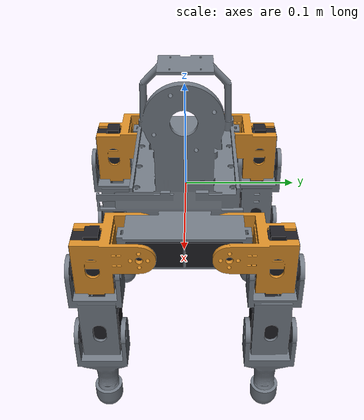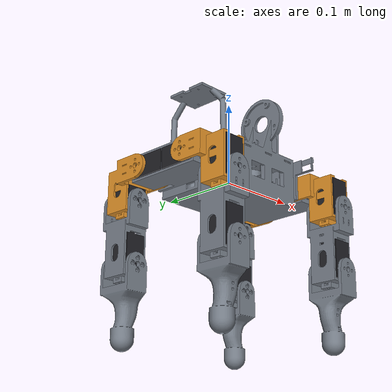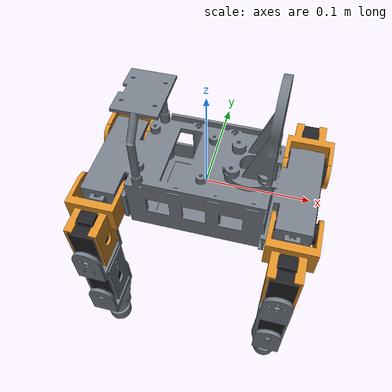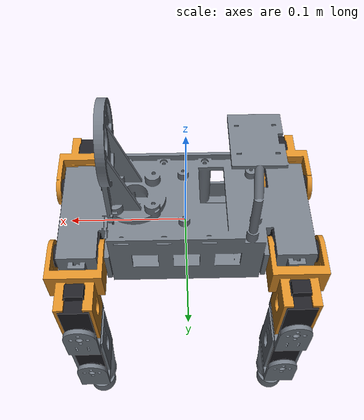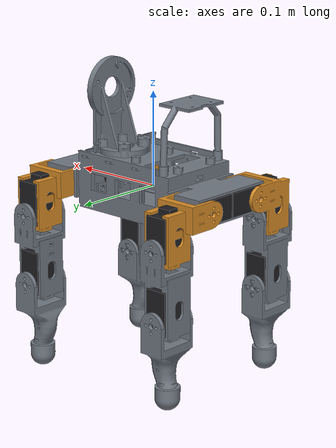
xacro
<?xml version="1.0"?>
<!-- SmallDog: MuJoCo-backed ros2_control system -->
<robot xmlns:xacro="http://www.ros.org/wiki/xacro" name="smalldog">

  <xacro:include filename="$(find smalldog_description)/urdf/smalldog.urdf" />

  <ros2_control name="MujocoSystem" type="system">
    <hardware>
      <plugin>mujoco_ros2_control/MujocoSystem</plugin>
    </hardware>

    <xacro:macro name="mj_joint" params="name">
      <joint name="${name}">
        <command_interface name="position"/>
        <state_interface name="position">
          <param name="initial_value">0</param>
        </state_interface>
        <state_interface name="velocity"/>
        <state_interface name="effort"/>
      </joint>
    </xacro:macro>

   <xacro:mj_joint name="fl_roll" />
   <xacro:mj_joint name="fl_pitch" />
   <xacro:mj_joint name="fl_knee" />
   <xacro:mj_joint name="fr_roll" />
   <xacro:mj_joint name="fr_pitch" />
   <xacro:mj_joint name="fr_knee" />
   <xacro:mj_joint name="rl_roll" />
   <xacro:mj_joint name="rl_pitch" />
   <xacro:mj_joint name="rl_knee" />
   <xacro:mj_joint name="rr_roll" />
   <xacro:mj_joint name="rr_pitch" />
   <xacro:mj_joint name="rr_knee" />

    <sensor name="imu_imu">
      <state_interface name="orientation.x"/>
      <state_interface name="orientation.y"/>
      <state_interface name="orientation.z"/>
      <state_interface name="orientation.w"/>
      <state_interface name="angular_velocity.x"/>
      <state_interface name="angular_velocity.y"/>
      <state_interface name="angular_velocity.z"/>
      <state_interface name="linear_acceleration.x"/>
      <state_interface name="linear_acceleration.y"/>
      <state_interface name="linear_acceleration.z"/>
    </sensor>

  </ros2_control>
</robot>

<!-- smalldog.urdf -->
<!-- generated by smalldog_description/scripts/generate_model.py -->
<robot name="smalldog">
  <material name="grey"><color rgba="0.45 0.48 0.52 1"/></material>
  <material name="orange"><color rgba="0.85 0.55 0.15 1"/></material>
  <material name="servo"><color rgba="0.12 0.12 0.14 1"/></material>
  <link name="base_link">
    <inertial>
      <origin xyz="0.008252 -0.000039 0.020861" rpy="0 0 0"/>
      <mass value="1.55858"/>
      <inertia ixx="0.00305822" ixy="0.00000641" ixz="-0.00077355" iyy="0.00648436" iyz="0.00000066" izz="0.00602368"/>
    </inertial>
    <visual>
      <origin xyz="0 0 0" rpy="0 0 0"/>
      <geometry><mesh filename="package://smalldog_description/meshes/base_link.stl" scale="0.001 0.001 0.001"/></geometry>
      <material name="grey"/>
    </visual>
    <visual>
      <origin xyz="0 0 0" rpy="0 0 0"/>
      <geometry><mesh filename="package://smalldog_description/meshes/fl_roll_servo.stl" scale="0.001 0.001 0.001"/></geometry>
      <material name="servo"/>
    </visual>
    <visual>
      <origin xyz="0 0 0" rpy="0 0 0"/>
      <geometry><mesh filename="package://smalldog_description/meshes/fr_roll_servo.stl" scale="0.001 0.001 0.001"/></geometry>
      <material name="servo"/>
    </visual>
    <visual>
      <origin xyz="0 0 0" rpy="0 0 0"/>
      <geometry><mesh filename="package://smalldog_description/meshes/rl_roll_servo.stl" scale="0.001 0.001 0.001"/></geometry>
      <material name="servo"/>
    </visual>
    <visual>
      <origin xyz="0 0 0" rpy="0 0 0"/>
      <geometry><mesh filename="package://smalldog_description/meshes/rr_roll_servo.stl" scale="0.001 0.001 0.001"/></geometry>
      <material name="servo"/>
    </visual>
    <collision><origin xyz="0.0000 0.0000 0.0020" rpy="0 0 0"/><geometry><box size="0.1260 0.0920 0.0540"/></geometry></collision>
    <collision><origin xyz="0.0000 0.0000 0.0000" rpy="0 0 0"/><geometry><box size="0.2130 0.0982 0.0307"/></geometry></collision>
  </link>
  <link name="fl_hip">
    <inertial>
      <origin xyz="0.000229 0.009229 -0.015242" rpy="0 0 0"/>
      <mass value="0.09016"/>
      <inertia ixx="0.00005182" ixy="-0.00000028" ixz="-0.00000031" iyy="0.00003286" iyz="0.00000062" izz="0.00004063"/>
    </inertial>
    <visual>
      <origin xyz="0 0 0" rpy="0 0 0"/>
      <geometry><mesh filename="package://smalldog_description/meshes/fl_hip.stl" scale="0.001 0.001 0.001"/></geometry>
      <material name="orange"/>
    </visual>
    <visual>
      <origin xyz="0 0 0" rpy="0 0 0"/>
      <geometry><mesh filename="package://smalldog_description/meshes/fl_pitch_servo.stl" scale="0.001 0.001 0.001"/></geometry>
      <material name="servo"/>
    </visual>
    <collision><origin xyz="0.0000 0.0400 -0.0475" rpy="0 0 0"/><geometry><box size="0.0307 0.0330 0.0512"/></geometry></collision>
  </link>
  <link name="fl_thigh">
    <inertial>
      <origin xyz="0.000016 0.000232 -0.053633" rpy="0 0 0"/>
      <mass value="0.09707"/>
      <inertia ixx="0.00006669" ixy="0.00000000" ixz="-0.00000002" iyy="0.00005970" iyz="-0.00000060" izz="0.00002103"/>
    </inertial>
    <visual>
      <origin xyz="0 0 0" rpy="0 0 0"/>
      <geometry><mesh filename="package://smalldog_description/meshes/fl_thigh.stl" scale="0.001 0.001 0.001"/></geometry>
      <material name="grey"/>
    </visual>
    <visual>
      <origin xyz="0 0 0" rpy="0 0 0"/>
      <geometry><mesh filename="package://smalldog_description/meshes/fl_knee_servo.stl" scale="0.001 0.001 0.001"/></geometry>
      <material name="servo"/>
    </visual>
    <collision><origin xyz="0.0000 0.0000 -0.0440" rpy="0 0 0"/><geometry><box size="0.0307 0.0330 0.0700"/></geometry></collision>
  </link>
  <link name="fl_shin">
    <inertial>
      <origin xyz="-0.000765 0.000406 -0.040530" rpy="0 0 0"/>
      <mass value="0.04630"/>
      <inertia ixx="0.00003772" ixy="-0.00000002" ixz="-0.00000030" iyy="0.00003304" iyz="-0.00000038" izz="0.00001004"/>
    </inertial>
    <visual>
      <origin xyz="0 0 0" rpy="0 0 0"/>
      <geometry><mesh filename="package://smalldog_description/meshes/fl_shin.stl" scale="0.001 0.001 0.001"/></geometry>
      <material name="grey"/>
    </visual>
    <collision><origin xyz="0.0000 0.0000 -0.0385" rpy="0 0 0"/><geometry><cylinder radius="0.0120" length="0.0610"/></geometry></collision>
    <collision><origin xyz="0.0000 0.0000 -0.0820" rpy="0 0 0"/><geometry><sphere radius="0.0130"/></geometry></collision>
  </link>
  <link name="fr_hip">
    <inertial>
      <origin xyz="0.000229 -0.009229 -0.015242" rpy="0 0 0"/>
      <mass value="0.09016"/>
      <inertia ixx="0.00005182" ixy="0.00000028" ixz="-0.00000031" iyy="0.00003286" iyz="-0.00000062" izz="0.00004063"/>
    </inertial>
    <visual>
      <origin xyz="0 0 0" rpy="0 0 0"/>
      <geometry><mesh filename="package://smalldog_description/meshes/fr_hip.stl" scale="0.001 0.001 0.001"/></geometry>
      <material name="orange"/>
    </visual>
    <visual>
      <origin xyz="0 0 0" rpy="0 0 0"/>
      <geometry><mesh filename="package://smalldog_description/meshes/fr_pitch_servo.stl" scale="0.001 0.001 0.001"/></geometry>
      <material name="servo"/>
    </visual>
    <collision><origin xyz="0.0000 -0.0400 -0.0475" rpy="0 0 0"/><geometry><box size="0.0307 0.0330 0.0512"/></geometry></collision>
  </link>
  <link name="fr_thigh">
    <inertial>
      <origin xyz="0.000016 -0.000232 -0.053633" rpy="0 0 0"/>
      <mass value="0.09707"/>
      <inertia ixx="0.00006669" ixy="-0.00000000" ixz="-0.00000002" iyy="0.00005970" iyz="0.00000060" izz="0.00002103"/>
    </inertial>
    <visual>
      <origin xyz="0 0 0" rpy="0 0 0"/>
      <geometry><mesh filename="package://smalldog_description/meshes/fr_thigh.stl" scale="0.001 0.001 0.001"/></geometry>
      <material name="grey"/>
    </visual>
    <visual>
      <origin xyz="0 0 0" rpy="0 0 0"/>
      <geometry><mesh filename="package://smalldog_description/meshes/fr_knee_servo.stl" scale="0.001 0.001 0.001"/></geometry>
      <material name="servo"/>
    </visual>
    <collision><origin xyz="0.0000 0.0000 -0.0440" rpy="0 0 0"/><geometry><box size="0.0307 0.0330 0.0700"/></geometry></collision>
  </link>
  <link name="fr_shin">
    <inertial>
      <origin xyz="-0.000765 -0.000406 -0.040530" rpy="0 0 0"/>
      <mass value="0.04630"/>
      <inertia ixx="0.00003772" ixy="0.00000002" ixz="-0.00000030" iyy="0.00003304" iyz="0.00000038" izz="0.00001004"/>
    </inertial>
    <visual>
      <origin xyz="0 0 0" rpy="0 0 0"/>
      <geometry><mesh filename="package://smalldog_description/meshes/fr_shin.stl" scale="0.001 0.001 0.001"/></geometry>
      <material name="grey"/>
    </visual>
    <collision><origin xyz="0.0000 0.0000 -0.0385" rpy="0 0 0"/><geometry><cylinder radius="0.0120" length="0.0610"/></geometry></collision>
    <collision><origin xyz="0.0000 0.0000 -0.0820" rpy="0 0 0"/><geometry><sphere radius="0.0130"/></geometry></collision>
  </link>
  <link name="rl_hip">
    <inertial>
      <origin xyz="-0.000229 0.009229 -0.015242" rpy="0 0 0"/>
      <mass value="0.09016"/>
      <inertia ixx="0.00005182" ixy="0.00000028" ixz="0.00000031" iyy="0.00003286" iyz="0.00000062" izz="0.00004063"/>
    </inertial>
    <visual>
      <origin xyz="0 0 0" rpy="0 0 0"/>
      <geometry><mesh filename="package://smalldog_description/meshes/rl_hip.stl" scale="0.001 0.001 0.001"/></geometry>
      <material name="orange"/>
    </visual>
    <visual>
      <origin xyz="0 0 0" rpy="0 0 0"/>
      <geometry><mesh filename="package://smalldog_description/meshes/rl_pitch_servo.stl" scale="0.001 0.001 0.001"/></geometry>
      <material name="servo"/>
    </visual>
    <collision><origin xyz="0.0000 0.0400 -0.0475" rpy="0 0 0"/><geometry><box size="0.0307 0.0330 0.0512"/></geometry></collision>
  </link>
  <link name="rl_thigh">
    <inertial>
      <origin xyz="-0.000016 0.000232 -0.053633" rpy="0 0 0"/>
      <mass value="0.09707"/>
      <inertia ixx="0.00006669" ixy="-0.00000000" ixz="0.00000002" iyy="0.00005970" iyz="-0.00000060" izz="0.00002103"/>
    </inertial>
    <visual>
      <origin xyz="0 0 0" rpy="0 0 0"/>
      <geometry><mesh filename="package://smalldog_description/meshes/rl_thigh.stl" scale="0.001 0.001 0.001"/></geometry>
      <material name="grey"/>
    </visual>
    <visual>
      <origin xyz="0 0 0" rpy="0 0 0"/>
      <geometry><mesh filename="package://smalldog_description/meshes/rl_knee_servo.stl" scale="0.001 0.001 0.001"/></geometry>
      <material name="servo"/>
    </visual>
    <collision><origin xyz="0.0000 0.0000 -0.0440" rpy="0 0 0"/><geometry><box size="0.0307 0.0330 0.0700"/></geometry></collision>
  </link>
  <link name="rl_shin">
    <inertial>
      <origin xyz="0.000765 0.000406 -0.040530" rpy="0 0 0"/>
      <mass value="0.04630"/>
      <inertia ixx="0.00003772" ixy="0.00000002" ixz="0.00000030" iyy="0.00003304" iyz="-0.00000038" izz="0.00001004"/>
    </inertial>
    <visual>
      <origin xyz="0 0 0" rpy="0 0 0"/>
      <geometry><mesh filename="package://smalldog_description/meshes/rl_shin.stl" scale="0.001 0.001 0.001"/></geometry>
      <material name="grey"/>
    </visual>
    <collision><origin xyz="0.0000 0.0000 -0.0385" rpy="0 0 0"/><geometry><cylinder radius="0.0120" length="0.0610"/></geometry></collision>
    <collision><origin xyz="0.0000 0.0000 -0.0820" rpy="0 0 0"/><geometry><sphere radius="0.0130"/></geometry></collision>
  </link>
  <link name="rr_hip">
    <inertial>
      <origin xyz="-0.000229 -0.009229 -0.015242" rpy="0 0 0"/>
      <mass value="0.09016"/>
      <inertia ixx="0.00005182" ixy="-0.00000028" ixz="0.00000031" iyy="0.00003286" iyz="-0.00000062" izz="0.00004063"/>
    </inertial>
    <visual>
      <origin xyz="0 0 0" rpy="0 0 0"/>
      <geometry><mesh filename="package://smalldog_description/meshes/rr_hip.stl" scale="0.001 0.001 0.001"/></geometry>
      <material name="orange"/>
    </visual>
    <visual>
      <origin xyz="0 0 0" rpy="0 0 0"/>
      <geometry><mesh filename="package://smalldog_description/meshes/rr_pitch_servo.stl" scale="0.001 0.001 0.001"/></geometry>
      <material name="servo"/>
    </visual>
    <collision><origin xyz="0.0000 -0.0400 -0.0475" rpy="0 0 0"/><geometry><box size="0.0307 0.0330 0.0512"/></geometry></collision>
  </link>
  <link name="rr_thigh">
    <inertial>
      <origin xyz="-0.000016 -0.000232 -0.053633" rpy="0 0 0"/>
      <mass value="0.09707"/>
      <inertia ixx="0.00006669" ixy="0.00000000" ixz="0.00000002" iyy="0.00005970" iyz="0.00000060" izz="0.00002103"/>
    </inertial>
    <visual>
      <origin xyz="0 0 0" rpy="0 0 0"/>
      <geometry><mesh filename="package://smalldog_description/meshes/rr_thigh.stl" scale="0.001 0.001 0.001"/></geometry>
      <material name="grey"/>
    </visual>
    <visual>
      <origin xyz="0 0 0" rpy="0 0 0"/>
      <geometry><mesh filename="package://smalldog_description/meshes/rr_knee_servo.stl" scale="0.001 0.001 0.001"/></geometry>
      <material name="servo"/>
    </visual>
    <collision><origin xyz="0.0000 0.0000 -0.0440" rpy="0 0 0"/><geometry><box size="0.0307 0.0330 0.0700"/></geometry></collision>
  </link>
  <link name="rr_shin">
    <inertial>
      <origin xyz="0.000765 -0.000406 -0.040530" rpy="0 0 0"/>
      <mass value="0.04630"/>
      <inertia ixx="0.00003772" ixy="-0.00000002" ixz="0.00000030" iyy="0.00003304" iyz="0.00000038" izz="0.00001004"/>
    </inertial>
    <visual>
      <origin xyz="0 0 0" rpy="0 0 0"/>
      <geometry><mesh filename="package://smalldog_description/meshes/rr_shin.stl" scale="0.001 0.001 0.001"/></geometry>
      <material name="grey"/>
    </visual>
    <collision><origin xyz="0.0000 0.0000 -0.0385" rpy="0 0 0"/><geometry><cylinder radius="0.0120" length="0.0610"/></geometry></collision>
    <collision><origin xyz="0.0000 0.0000 -0.0820" rpy="0 0 0"/><geometry><sphere radius="0.0130"/></geometry></collision>
  </link>
  <joint name="fl_roll" type="revolute">
    <parent link="base_link"/>
    <child link="fl_hip"/>
    <origin xyz="0.09000 0.03600 0.00000" rpy="0 0 0"/>
    <axis xyz="1 0 0"/>
    <limit lower="-1.5708" upper="1.5708" effort="4.5" velocity="3.86"/>
  </joint>
  <joint name="fl_pitch" type="revolute">
    <parent link="fl_hip"/>
    <child link="fl_thigh"/>
    <origin xyz="0.00000 0.04000 -0.03000" rpy="0 0 0"/>
    <axis xyz="0 1 0"/>
    <limit lower="-1.5708" upper="1.5708" effort="4.5" velocity="3.86"/>
  </joint>
  <joint name="fl_knee" type="revolute">
    <parent link="fl_thigh"/>
    <child link="fl_shin"/>
    <origin xyz="0.00000 0.00000 -0.07500" rpy="0 0 0"/>
    <axis xyz="0 1 0"/>
    <limit lower="-1.9199" upper="1.9199" effort="4.5" velocity="3.86"/>
  </joint>
  <joint name="fr_roll" type="revolute">
    <parent link="base_link"/>
    <child link="fr_hip"/>
    <origin xyz="0.09000 -0.03600 0.00000" rpy="0 0 0"/>
    <axis xyz="1 0 0"/>
    <limit lower="-1.5708" upper="1.5708" effort="4.5" velocity="3.86"/>
  </joint>
  <joint name="fr_pitch" type="revolute">
    <parent link="fr_hip"/>
    <child link="fr_thigh"/>
    <origin xyz="0.00000 -0.04000 -0.03000" rpy="0 0 0"/>
    <axis xyz="0 1 0"/>
    <limit lower="-1.5708" upper="1.5708" effort="4.5" velocity="3.86"/>
  </joint>
  <joint name="fr_knee" type="revolute">
    <parent link="fr_thigh"/>
    <child link="fr_shin"/>
    <origin xyz="0.00000 0.00000 -0.07500" rpy="0 0 0"/>
    <axis xyz="0 1 0"/>
    <limit lower="-1.9199" upper="1.9199" effort="4.5" velocity="3.86"/>
  </joint>
  <joint name="rl_roll" type="revolute">
    <parent link="base_link"/>
    <child link="rl_hip"/>
    <origin xyz="-0.09000 0.03600 0.00000" rpy="0 0 0"/>
    <axis xyz="1 0 0"/>
    <limit lower="-1.5708" upper="1.5708" effort="4.5" velocity="3.86"/>
  </joint>
  <joint name="rl_pitch" type="revolute">
    <parent link="rl_hip"/>
    <child link="rl_thigh"/>
    <origin xyz="0.00000 0.04000 -0.03000" rpy="0 0 0"/>
    <axis xyz="0 1 0"/>
    <limit lower="-1.5708" upper="1.5708" effort="4.5" velocity="3.86"/>
  </joint>
  <joint name="rl_knee" type="revolute">
    <parent link="rl_thigh"/>
    <child link="rl_shin"/>
    <origin xyz="0.00000 0.00000 -0.07500" rpy="0 0 0"/>
    <axis xyz="0 1 0"/>
    <limit lower="-1.9199" upper="1.9199" effort="4.5" velocity="3.86"/>
  </joint>
  <joint name="rr_roll" type="revolute">
    <parent link="base_link"/>
    <child link="rr_hip"/>
    <origin xyz="-0.09000 -0.03600 0.00000" rpy="0 0 0"/>
    <axis xyz="1 0 0"/>
    <limit lower="-1.5708" upper="1.5708" effort="4.5" velocity="3.86"/>
  </joint>
  <joint name="rr_pitch" type="revolute">
    <parent link="rr_hip"/>
    <child link="rr_thigh"/>
    <origin xyz="0.00000 -0.04000 -0.03000" rpy="0 0 0"/>
    <axis xyz="0 1 0"/>
    <limit lower="-1.5708" upper="1.5708" effort="4.5" velocity="3.86"/>
  </joint>
  <joint name="rr_knee" type="revolute">
    <parent link="rr_thigh"/>
    <child link="rr_shin"/>
    <origin xyz="0.00000 0.00000 -0.07500" rpy="0 0 0"/>
    <axis xyz="0 1 0"/>
    <limit lower="-1.9199" upper="1.9199" effort="4.5" velocity="3.86"/>
  </joint>
  <link name="lidar_link"/>
  <joint name="lidar_link_joint" type="fixed">
    <parent link="base_link"/><child link="lidar_link"/>
    <origin xyz="0.0734663 0 0.0914663" rpy="0 0.785398 0"/>
  </joint>
  <link name="camera_link"/>
  <joint name="camera_joint" type="fixed">
    <parent link="base_link"/><child link="camera_link"/>
    <origin xyz="0.0787343 0 0.0257543" rpy="0 -0.10472 0"/>
  </joint>
  <link name="camera_optical_frame"/>
  <joint name="camera_optical_joint" type="fixed">
    <parent link="camera_link"/><child link="camera_optical_frame"/>
    <origin xyz="0 0 0" rpy="-1.5708 0 -1.5708"/>
  </joint>
  <link name="gps_link"/>
  <joint name="gps_joint" type="fixed">
    <parent link="base_link"/><child link="gps_link"/>
    <origin xyz="-0.05200 0.00000 0.07260" rpy="0 0 0"/>
  </joint>
</robot>
